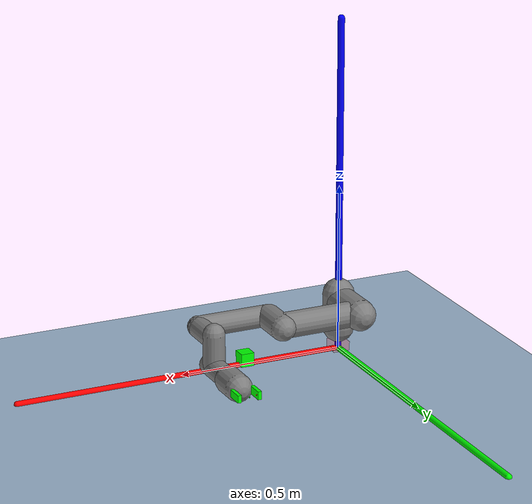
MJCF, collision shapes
<mujoco model="ur3e single cube">

  <!-- Include the scene setup (robot + floor + cameras + materials) -->
  <include file="mjx_scene_position_ur3.xml"/>

  <worldbody>
    <!-- Box to pick (UR3 has shorter reach than UR10: pulled in from 0.7 m to 0.3 m) -->
    <body name="box" pos="0.3 0 0.02">
      <freejoint/>
      <geom type="box" name="box" size="0.02 0.02 0.02" condim="4"
            friction="1 .03 .003" rgba="0 1 0 1"
            contype="1" conaffinity="3" solref="0.01 1" solimp="0.99 0.995 0.001 0.5 2"/>
    </body>

    <!-- Mocap target: 5 cm box the 4 cm cube must be positioned inside; pose set per-episode by reset -->
    <body mocap="true" name="mocap_target">
      <geom type="box" name="mocap_target_geom" size="0.025 0.025 0.025" rgba="1 0 0 0.2" contype="0" conaffinity="0"/>
    </body>
  </worldbody>

  <!-- Keyframes (15 qpos = 6 arm + 2 finger + 7 box freejoint; 7 ctrl = 6 arm + 1 gripper) -->
  <keyframe>
    <key name="task_home"
      qpos="0 -2.0 1.6 -1.6 -1.5 0 0.025 0.025
            0.3 0 0.02
            1 0 0 0"
      ctrl="0 -2.0 1.6 -1.6 -1.5 0  0.025"/>

    <key name="low_home"
      qpos="0 -1.7 2.25 -2.15 -1.5 -1.5  0 0
            0.3 0 0.02
            1 0 0 0"
      ctrl="0 -1.7 2.25 -2.15 -1.5 -1.5  0"/>

    <key name="tucked"
      qpos="0 -2.36 2.36 -1.57 -1.57 0  0 0
            0.3 0 0.02
            1 0 0 0"
      ctrl="0 -2.36 2.36 -1.57 -1.57 0  0"/>
  </keyframe>

  <include file="ur3_pick_sensor.xml"/>

</mujoco>

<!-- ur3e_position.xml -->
<mujoco model="ur3e">
  <compiler angle="radian" eulerseq="xyz" meshdir="../universal_robots_ur3e/assets" autolimits="true"/>
  <option integrator="implicitfast"/>

  <!-- Default settings -->
  <default>
    <default class="ur3e">
      <material specular="0.5" shininess="0.25"/>
      <joint axis="0 1 0" range="-6.28319 6.28319" armature="0.1"/>
      <general gaintype="fixed" biastype="affine" ctrlrange="-6.2831 6.2831"/>

      <default class="size2">
        <general gainprm="1000" biasprm="0 -1000 -200" forcerange="-56 56"/>
      </default>
      <default class="size1">
        <default class="size1_limited">
          <joint range="-3.14159 3.14159"/>
          <general gainprm="500" biasprm="0 -500 -100" ctrlrange="-3.14159 3.14159" forcerange="-28 28"/>
        </default>
      </default>
      <default class="size0">
        <general gainprm="200" biasprm="0 -200 -40" forcerange="-12 12"/>
      </default>

      <default class="visual">
        <geom type="mesh" contype="0" conaffinity="0" group="2"/>
      </default>
      <default class="collision">
        <geom type="capsule" group="3"/>
      </default>
      <default class="eef_collision">
        <geom type="capsule" group="3"/>
      </default>
      <default class="hande_collision">
        <geom type="mesh" group="3" rgba="0.7 0.7 0.7 1"/>
      </default>

      <site size="0.001" rgba="0.5 0.5 0.5 0.3" group="4"/>
    </default>

    <default class="hande">
      <default class="hande_right_finger">
        <joint type="slide" range="0 0.025" actuatorfrcrange="-100 100" damping="15" armature="0.02" solimplimit="0.95 0.99 0.001" solreflimit="0.005 1"/>
      </default>
      <default class="hande_left_finger">
        <joint type="slide" range="0 0.025" actuatorfrcrange="-100 100" damping="15" armature="0.02" solimplimit="0.95 0.99 0.001" solreflimit="0.005 1"/>
      </default>
    </default>
  </default>

  <asset>
    <material class="ur3e" name="black" rgba="0.033 0.033 0.033 1"/>
    <material class="ur3e" name="jointgray" rgba="0.278 0.278 0.278 1"/>
    <material class="ur3e" name="linkgray" rgba="0.82 0.82 0.82 1"/>
    <material class="ur3e" name="urblue" rgba="0.49 0.678 0.8 1"/>

    <!-- UR3 meshes -->
    <mesh file="base_0.obj"/>
    <mesh file="base_1.obj"/>
    <mesh file="shoulder_0.obj"/>
    <mesh file="shoulder_1.obj"/>
    <mesh file="shoulder_2.obj"/>
    <mesh file="upperarm_0.obj"/>
    <mesh file="upperarm_1.obj"/>
    <mesh file="upperarm_2.obj"/>
    <mesh file="upperarm_3.obj"/>
    <mesh file="forearm_0.obj"/>
    <mesh file="forearm_1.obj"/>
    <mesh file="forearm_2.obj"/>
    <mesh file="forearm_3.obj"/>
    <mesh file="wrist1_0.obj"/>
    <mesh file="wrist1_1.obj"/>
    <mesh file="wrist1_2.obj"/>
    <mesh file="wrist2_0.obj"/>
    <mesh file="wrist2_1.obj"/>
    <mesh file="wrist2_2.obj"/>
    <mesh file="wrist3.obj"/>

    <!-- Robotiq Hand-E meshes -->
    <mesh name="hande" file="hande.stl"/>
    <mesh name="coupler" file="coupler.stl"/>
    <mesh name="left_finger" file="finger_2.stl"/>
    <mesh name="right_finger" file="finger_1.stl"/>
    <mesh name="hande_col" file="hande-collision.stl"/>
    <mesh name="hande_col_right" file="finger_1-collision.stl"/>
    <mesh name="hande_col_left" file="finger_2-collision.stl"/>
  </asset>

  <!-- ================= UR3 Kinematic Chain ================= -->
  <worldbody>
    <light name="spotlight" mode="targetbodycom" target="wrist_3_link" pos="0 -1 2"/>

    <body name="base" childclass="ur3e">
      <inertial mass="2" pos="0 0 0" diaginertia="0.0030532 0.0030532 0.005625"/>
      <geom mesh="base_0" material="jointgray" class="visual"/>
      <geom mesh="base_1" material="black" class="visual"/>

      <body name="shoulder_link" pos="0 0 0.152">
        <inertial mass="2" pos="0 0 0" diaginertia="0.00809316 0.00809316 0.005625"/>
        <joint name="shoulder_pan_joint" class="size2" axis="0 0 1"/>
        <geom mesh="shoulder_0" material="urblue" class="visual"/>
        <geom mesh="shoulder_1" material="black" class="visual"/>
        <geom mesh="shoulder_2" material="jointgray" class="visual"/>
        <geom class="collision" size="0.047 0.05" pos="0 0 -0.032"/>

        <body name="upper_arm_link" pos="0 0.12 0" quat="1 0 1 0">
          <inertial mass="3.42" pos="0 0 0.122" diaginertia="0.0217285 0.0217285 0.00961875"/>
          <joint name="shoulder_lift_joint" class="size2"/>
          <geom mesh="upperarm_0" material="black" class="visual"/>
          <geom mesh="upperarm_1" material="urblue" class="visual"/>
          <geom mesh="upperarm_2" material="jointgray" class="visual"/>
          <geom mesh="upperarm_3" material="linkgray" class="visual"/>
          <geom class="collision" size="0.046 0.06" pos="0 -0.04 0" quat="1 1 0 0"/>
          <geom class="collision" size="0.038 0.11" pos="0 0 0.12"/>

          <body name="forearm_link" pos="0 -0.093 0.244">
            <inertial mass="1.26" pos="0 0 0.10625" diaginertia="0.00654457 0.00654457 0.00354375"/>
            <joint name="elbow_joint" class="size1_limited"/>
            <geom mesh="forearm_0" material="urblue" class="visual"/>
            <geom mesh="forearm_1" material="linkgray" class="visual"/>
            <geom mesh="forearm_2" material="black" class="visual"/>
            <geom mesh="forearm_3" material="jointgray" class="visual"/>
            <geom class="collision" size="0.038 0.048" pos="0 0.062 0" quat="1 1 0 0"/>
            <geom class="collision" size="0.032 0.103" pos="0 0 0.11"/>

            <body name="wrist_1_link" pos="0.0005 0 0.2125" quat="1 0 1 0">
              <inertial mass="0.8" pos="0 0.104 0" diaginertia="0.00225 0.002085 0.002085"/>
              <joint name="wrist_1_joint" class="size0"/>
              <geom mesh="wrist1_0" material="jointgray" class="visual"/>
              <geom mesh="wrist1_1" material="urblue" class="visual"/>
              <geom mesh="wrist1_2" material="black" class="visual"/>
              <geom class="collision" size="0.032 0.05" pos="0 0.045 0" quat="1 1 0 0"/>

              <body name="wrist_2_link" pos="0 0.104 0">
                <inertial mass="0.8" pos="0 0 0.085" diaginertia="0.00225 0.002085 0.002085"/>
                <joint name="wrist_2_joint" axis="0 0 1" class="size0"/>
                <geom mesh="wrist2_0" material="jointgray" class="visual"/>
                <geom mesh="wrist2_1" material="black" class="visual"/>
                <geom mesh="wrist2_2" material="urblue" class="visual"/>
                <geom class="collision" size="0.032 0.05" pos="0 0 0.035"/>
                <geom class="collision" size="0.032 0.05" pos="0 0.025 0.085" quat="1 1 0 0"/>

                <body name="wrist_3_link" pos="0 0 0.085">
                  <inertial mass="0.35" pos="0 0.0715 0" quat="1 0 0 1" diaginertia="0.0001792 0.000136267 0.000136267"/>
                  <joint name="wrist_3_joint" class="size0"/>
                  <geom mesh="wrist3" material="linkgray" class="visual"/>
                  <geom name="attachment_site_collision" class="eef_collision" pos="0 0.132 0" quat="1 1 0 0" size="0.04 0.032"/>
                  <site name="attachment_site" pos="0 0.09215 0" quat="-1 1 0 0"/>

                  <!-- ================= Hand-E Integration ================= -->
                  <body name="robotiq_hande_mount" pos="0 0.09215 0" quat="-1 1 0 0">

                    <!-- Main hand body -->
                    <geom name="hande_coupler" mesh="coupler" class="visual" rgba="0.1 0.1 0.1 1"/>
                    <geom name="hand_base" mesh="hande" class="visual" rgba="0.1 0.1 0.1 1"/>
                    <!-- tcp is the distance position for the gripper to box -->
                    <site name="tcp" pos="0 0 0.145" rgba="0 1 0 1" size="0.002" group="2"/>t

                    <!-- Left finger -->
                    <body name="hande_left_finger" pos="0 0 0.099">
                      <inertial pos="0.02262 -0.00759 0.00738"
                                quat="0.871952 0.0369732 -0.211073 0.440205"
                                mass="0.03804"
                                diaginertia="1.22763e-05 1.22763e-05 1.22763e-05"/>
                      <joint name="hande_left_finger_joint" class="hande_left_finger" axis="1 0 0"/>
                      <geom name="left_finger" mesh="left_finger" class="visual" rgba="0.4 0.4 0.4 1"/>
                      <geom name="left_finger_collision"
                            type="box" size="0.0055 0.011 0.025" pos="-0.0305 0 0.023" rgba="0 1 0 0.3"
                            contype="1" conaffinity="1" group="3"
                            solref="0.01 1"
                            solimp="0.99 0.995 0.001 0.5 2"
                            friction="2.0 0.005 0.001"/>
                      <site name="left_finger_touch_site" pos="-0.025 0 0.04" size="0.002" rgba="1 0 0 1" group="2"/>
                    </body>

                    <!-- Right finger -->
                    <body name="hande_right_finger" pos="0 0 0.099">
                      <inertial pos="-0.02262 0.00759 0.00738"
                                quat="0.871952 -0.0369732 0.211073 0.440205"
                                mass="0.03804"
                                diaginertia="1.22763e-05 1.22763e-05 1.22763e-05"/>
                      <joint name="hande_right_finger_joint" class="hande_right_finger" axis="-1 0 0"/>
                      <geom name="right_finger" mesh="right_finger" class="visual" rgba="0.4 0.4 0.4 1"/>
                      <geom name="right_finger_collision"
                            type="box" size="0.0056 0.012 0.025" pos="0.0305 0 0.023" rgba="0 1 0 0.3"
                            contype="1" conaffinity="1" group="3"
                            solref="0.01 1"
                            solimp="0.99 0.995 0.001 0.5 2"
                            friction="2.0 0.005 0.001"/>
                      <site name="right_finger_touch_site" pos="0.025 0 0.04" size="0.002" rgba="1 0 0 1" group="2"/>
                    </body>
                  </body>
                </body>
              </body>
            </body>
          </body>
        </body>
      </body>
    </body>
  </worldbody>

  <!-- ================= Hand-E Mechanics ================= -->
  <contact>
    <exclude body1="robotiq_hande_mount" body2="hande_left_finger"/>
    <exclude body1="robotiq_hande_mount" body2="hande_right_finger"/>
    <exclude body1="wrist_3_link" body2="hande_left_finger"/>
    <exclude body1="wrist_3_link" body2="hande_right_finger"/>
  </contact>

  <equality>
    <joint joint1="hande_left_finger_joint" joint2="hande_right_finger_joint"
           polycoef="0 1 0 0 0"
           solref="0.008 1"
           solimp="0.95 0.99 0.001"/>
  </equality>

  <tendon>
    <fixed name="split">
      <joint joint="hande_left_finger_joint" coef="0.5"/>
      <joint joint="hande_right_finger_joint" coef="0.5"/>
    </fixed>
  </tendon>

  <actuator>
    <!-- Arm actuators -->
    <general class="size2" name="shoulder_pan" joint="shoulder_pan_joint"/>
    <general class="size2" name="shoulder_lift" joint="shoulder_lift_joint"/>
    <general class="size1_limited" name="elbow" joint="elbow_joint"/>
    <general class="size0" name="wrist_1" joint="wrist_1_joint"/>
    <general class="size0" name="wrist_2" joint="wrist_2_joint"/>
    <general class="size0" name="wrist_3" joint="wrist_3_joint"/>

    <position name="hande_fingers_actuator"
        ctrlrange="0 0.025"
        tendon="split"
        kp="400"
        kv="1"
        forcerange="-130 130"
        ctrllimited="true"
        forcelimited="true"/>
  </actuator>

  <keyframe>
    <key name="home"
      qpos="0 -2.0 2.0 -1.7 -1.5 0 0 0"
      ctrl="0 -2.0 2.0 -1.7 -1.5 0 0"/>

    <key name="vertical_home"
      qpos="0 -1.5708 0 -1.5708 0 0 0.025 0.025"
      ctrl="0 -1.5708 0 -1.5708 0 0 0.025"/>
  </keyframe>
</mujoco>

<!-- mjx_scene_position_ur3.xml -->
<mujoco model="ur3e scene">
  <include file="../universal_robots_ur3e/ur3e_position.xml"/>

  <worldbody>
    <!-- World coordinate frame visualization -->
    <geom name="world_x_axis" type="capsule" size="0.01 0.5" pos="0.5 0 0"
          quat="0.7071 0 0.7071 0" rgba="1 0 0 1" contype="0" conaffinity="0"/>
    <geom name="world_y_axis" type="capsule" size="0.01 0.5" pos="0 0.5 0"
          quat="0.7071 -0.7071 0 0" rgba="0 1 0 1" contype="0" conaffinity="0"/>
    <geom name="world_z_axis" type="capsule" size="0.01 0.5" pos="0 0 0.5"
          rgba="0 0 1 1" contype="0" conaffinity="0"/>

    <!-- Floor and lighting -->
    <light pos="0 0 3" dir="0 0 -1" directional="true"/>
    <geom name="floor" type="plane" size="0 0 0.05" material="groundplane" contype="1" conaffinity="3" solref="0.001 1"/>

    <!-- Cameras (UR3 has shorter reach than UR10: pulled in) -->
    <camera name="front" fovy="42" pos="0.85 0.001 0.4" xyaxes="0.006 1.000 -0.000 -0.720 0.004 0.694"/>

    <body name="camera_target" pos="0.3 0 0.1">
      <geom type="sphere" size="0.005" rgba="1 0 0 0" contype="0" conaffinity="0"/>
    </body>
    <camera name="side_130" pos="0.6 -0.8 0.9" mode="targetbody" target="camera_target" fovy="70"/>
    <camera name="box_detail" pos="0.6 -0.8 0.6" mode="targetbody" target="camera_target" fovy="35"/>
  </worldbody>

  <statistic center="0.3 0 0.1" extent="0.8"/>

  <option timestep="0.005" iterations="12" ls_iterations="12"
          integrator="implicitfast">
    <flag eulerdamp="disable"/>
  </option>

  <custom>
    <!-- MJX keeps the deepest N contacts per condim group; a cube gripped on the table is 4+4+4 = 12 condim-4 contacts, exactly the old cap, so 24 gives headroom. -->
    <numeric data="24" name="max_contact_points"/>
  </custom>

  <visual>
    <headlight diffuse=".8 .8 .8" ambient=".2 .2 .2" specular="1 1 1"/>
    <rgba force="1 0 0 1"/>
    <global azimuth="-40" elevation="-30" offwidth="960" offheight="720"/>
    <map force="0.01"/>
    <quality shadowsize="8192"/>
    <scale contactwidth="0.075" contactheight="0.025" forcewidth="0.05" com="0.05" framewidth="0.01" framelength="0.2"/>
  </visual>

  <asset>
    <texture type="skybox" builtin="gradient" rgb1="0.8 0.9 1" rgb2="0.4 0.5 0.6" width="800" height="800"/>
    <texture type="2d" name="grid" builtin="checker" rgb1="0.8 0.9 1" rgb2="0.4 0.5 0.6" width="512" height="512" mark="edge" markrgb="0.2 0.2 0.2"/>
    <material name="groundplane" texture="grid" texrepeat="5 5" texuniform="true" reflectance="0.2"/>
  </asset>
</mujoco>

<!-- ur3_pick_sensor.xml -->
<mujoco>
  <sensor>

    <contact name="left_finger_pad_floor_found" geom1="left_finger_collision" geom2="floor" reduce="mindist" num="1" data="found"/>
    <contact name="right_finger_pad_floor_found" geom1="right_finger_collision" geom2="floor" reduce="mindist" num="1" data="found"/>
    <contact name="hand_capsule_floor_found" geom1="attachment_site_collision" geom2="floor" reduce="mindist" num="1" data="found"/>

    <contact name="left_finger_pad_lifter_found" geom1="left_finger_collision" geom2="lifter" reduce="mindist" num="1" data="found"/>
    <contact name="right_finger_pad_lifter_found" geom1="right_finger_collision" geom2="lifter" reduce="mindist" num="1" data="found"/>
    <contact name="hand_capsule_lifter_found" geom1="attachment_site_collision" geom2="lifter" reduce="mindist" num="1" data="found"/>

    <contact name="box_hand_found" geom1="box" geom2="attachment_site_collision" reduce="mindist" num="1" data="found"/>

    <!-- Box contact (for grasp detection) -->
    <contact name="left_finger_box_contact" geom1="left_finger_collision" geom2="box" reduce="mindist" num="1" data="found"/>
    <contact name="right_finger_box_contact" geom1="right_finger_collision" geom2="box" reduce="mindist" num="1" data="found"/>

    <!-- Position tracking -->
    <framepos name="tcp_position" objtype="site" objname="tcp"/>
    <framepos name="box_position" objtype="body" objname="box"/>

  </sensor>
</mujoco>
